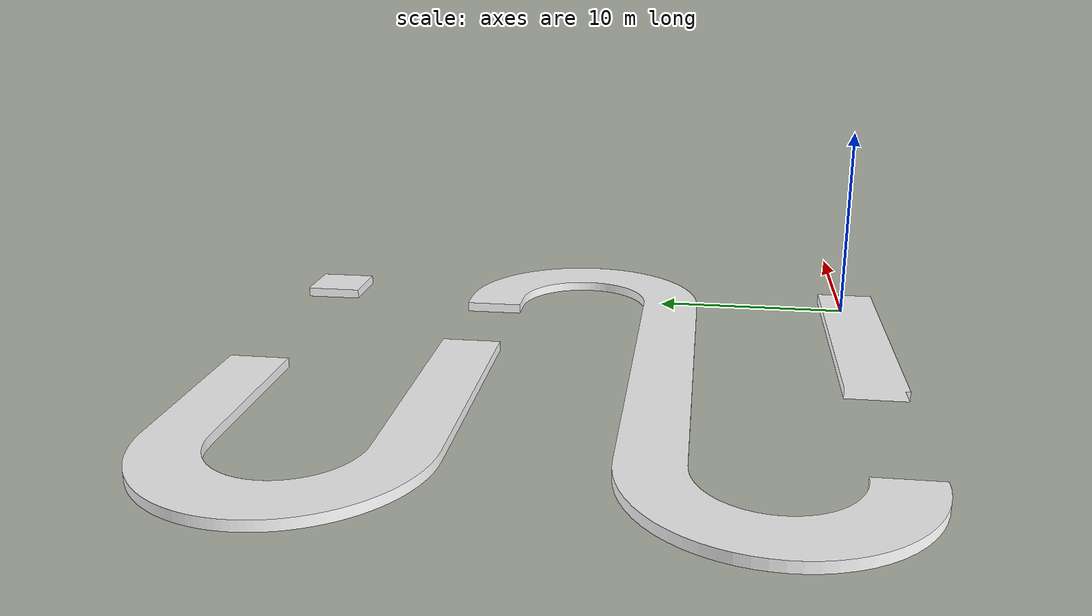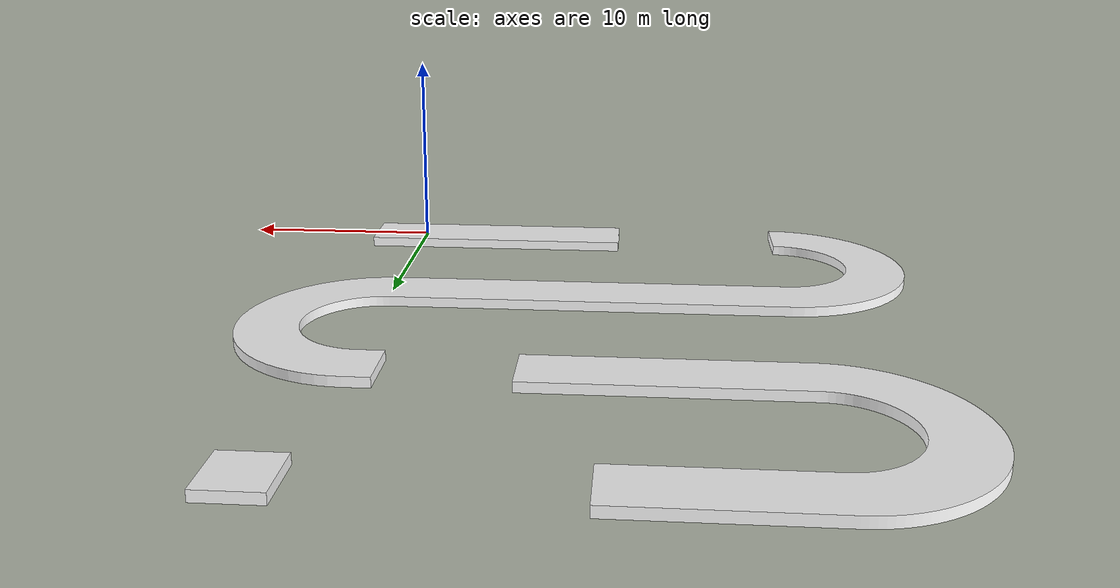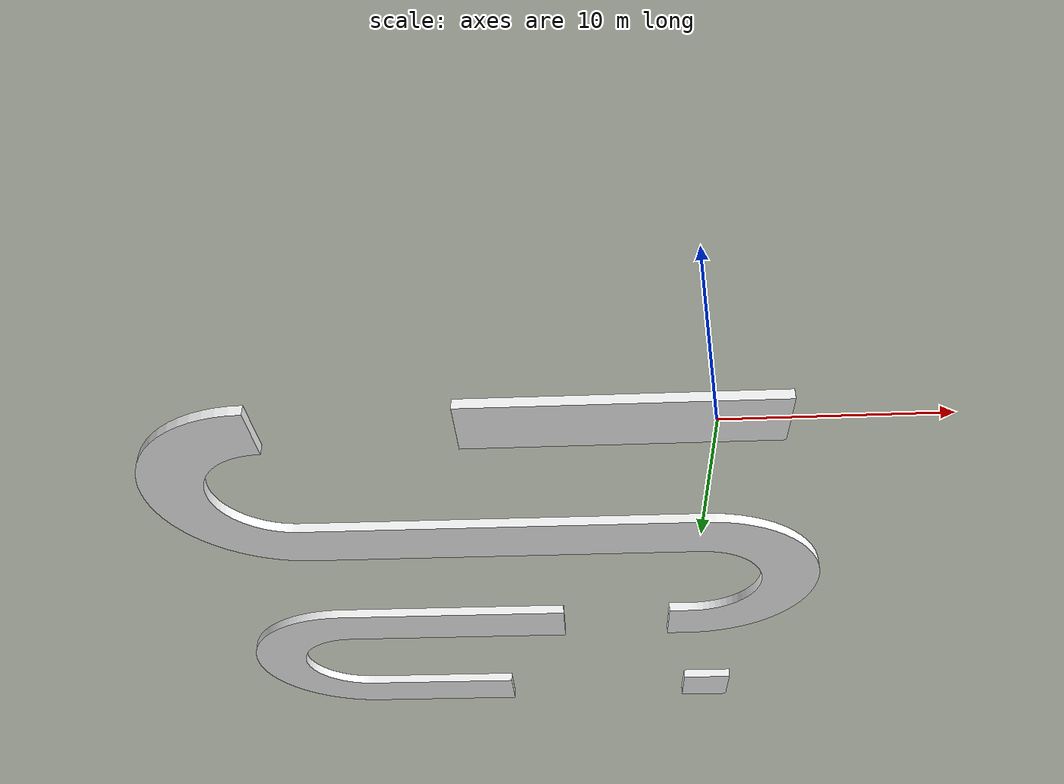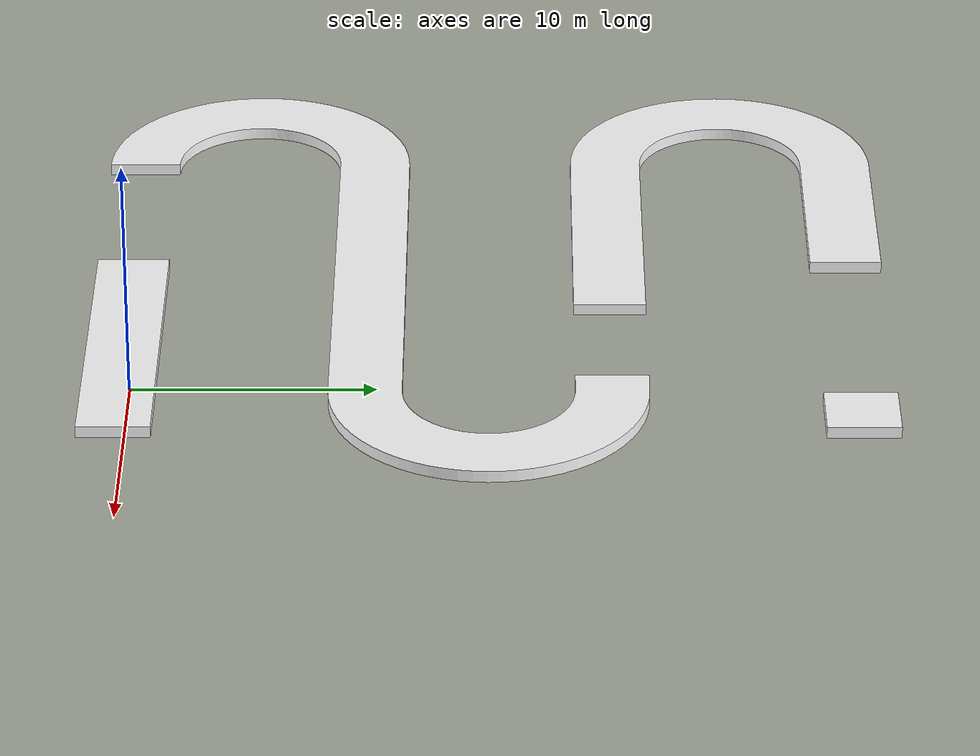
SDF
<?xml version="1.0" ?>
<sdf version="1.6">
  <model name="yol">
    <static>true</static>
    <link name="link">
      <collision name="collision">
        <geometry>
          <mesh>
            <uri>model://yol/meshes/yol.dae</uri>
          </mesh>
        </geometry>
      </collision>
      <visual name="visual">
        <geometry>
          <mesh>
            <uri>model://yol/meshes/yol.dae</uri>
          </mesh>
        </geometry>
      </visual>
    </link>
  </model>
</sdf>
